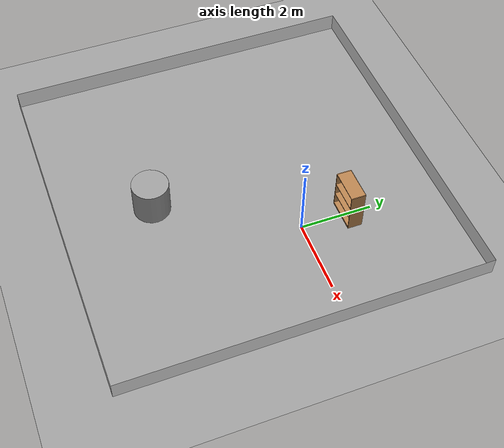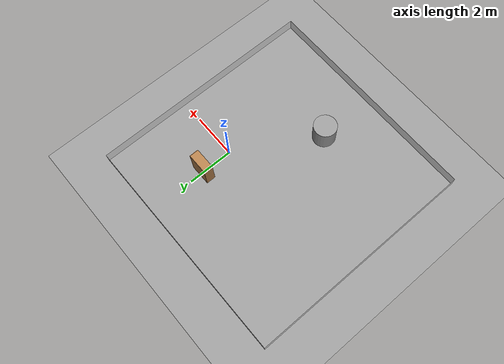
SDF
<sdf version="1.4">
 <world name="default">
  <light name="sun" type="directional">
   <pose>0 0 10 0 -0 0</pose>
   <diffuse>0.8 0.8 0.8 1</diffuse>
   <specular>0.2 0.2 0.2 1</specular>
   <attenuation>
    <range>1000</range>
    <constant>0.9</constant>
    <linear>0.01</linear>
    <quadratic>0.001</quadratic>
   </attenuation>
   <direction>0.5 0.1 -0.9</direction>
  </light>
  <scene><ambient>0.4 0.4 0.4 1</ambient><background>0.7 0.7 0.7 1</background><shadows>1</shadows></scene>
  <physics type="ode">
   <max_step_size>0.01</max_step_size>
   <real_time_factor>1</real_time_factor>
   <real_time_update_rate>100</real_time_update_rate>
   <gravity>0 0 -9.8</gravity>
  </physics>
  <model name="bookshelf">
   <static>1</static>
   <link name="link">
    <inertial><mass>1</mass></inertial>
    <collision name="back">
     <pose>0 0.005 0.6 0 -0 0</pose>
     <geometry><box><size>0.9 0.01 1.2</size></box></geometry>
    </collision>
    <visual name="visual1">
     <pose>0 0.005 0.6 0 -0 0</pose>
     <geometry><box><size>0.9 0.01 1.2</size></box></geometry>
     <material>
      <script><uri>file://media/materials/scripts/gazebo.material</uri><name>Gazebo/Wood</name></script>
     </material>
    </visual>
    <collision name="left_side">
     <pose>0.45 -0.195 0.6 0 -0 0</pose>
     <geometry><box><size>0.02 0.4 1.2</size></box></geometry>
    </collision>
    <visual name="visual2">
     <pose>0.45 -0.195 0.6 0 -0 0</pose>
     <geometry><box><size>0.02 0.4 1.2</size></box></geometry>
     <material>
      <script><uri>file://media/materials/scripts/gazebo.material</uri><name>Gazebo/Wood</name></script>
     </material>
    </visual>
    <collision name="right_side">
     <pose>-0.45 -0.195 0.6 0 -0 0</pose>
     <geometry><box><size>0.02 0.4 1.2</size></box></geometry>
    </collision>
    <visual name="visual3">
     <pose>-0.45 -0.195 0.6 0 -0 0</pose>
     <geometry><box><size>0.02 0.4 1.2</size></box></geometry>
     <material>
      <script><uri>file://media/materials/scripts/gazebo.material</uri><name>Gazebo/Wood</name></script>
     </material>
    </visual>
    <collision name="bottom">
     <pose>0 -0.195 0.03 0 -0 0</pose>
     <geometry><box><size>0.88 0.4 0.06</size></box></geometry>
    </collision>
    <visual name="visual4">
     <pose>0 -0.195 0.03 0 -0 0</pose>
     <geometry><box><size>0.88 0.4 0.06</size></box></geometry>
     <material>
      <script><uri>file://media/materials/scripts/gazebo.material</uri><name>Gazebo/Wood</name></script>
     </material>
    </visual>
    <collision name="top">
     <pose>0 -0.195 1.19 0 -0 0</pose>
     <geometry><box><size>0.88 0.4 0.02</size></box></geometry>
    </collision>
    <visual name="visual5">
     <pose>0 -0.195 1.19 0 -0 0</pose>
     <geometry><box><size>0.88 0.4 0.02</size></box></geometry>
     <material>
      <script><uri>file://media/materials/scripts/gazebo.material</uri><name>Gazebo/Wood</name></script>
     </material>
    </visual>
    <collision name="low_shelf">
     <pose>0 -0.195 0.43 0 -0 0</pose>
     <geometry><box><size>0.88 0.4 0.02</size></box></geometry>
    </collision>
    <visual name="visual6">
     <pose>0 -0.195 0.43 0 -0 0</pose>
     <geometry><box><size>0.88 0.4 0.02</size></box></geometry>
     <material>
      <script><uri>file://media/materials/scripts/gazebo.material</uri><name>Gazebo/Wood</name></script>
     </material>
    </visual>
    <collision name="high_shelf">
     <pose>0 -0.195 0.8 0 -0 0</pose>
     <geometry><box><size>0.88 0.4 0.02</size></box></geometry>
    </collision>
    <visual name="visual7">
     <pose>0 -0.195 0.8 0 -0 0</pose>
     <geometry><box><size>0.88 0.4 0.02</size></box></geometry>
     <material>
      <script><uri>file://media/materials/scripts/gazebo.material</uri><name>Gazebo/Wood</name></script>
     </material>
    </visual>
    <velocity_decay><linear>0</linear><angular>0</angular></velocity_decay>
   </link>
   <pose>0 1.53026 0 0 -0 0</pose>
  </model>
  <model name="ground_plane_0">
   <static>1</static>
   <link name="link">
    <collision name="collision">
     <geometry><plane><normal>0 0 1</normal><size>100 100</size></plane></geometry>
     <surface><friction><ode><mu>100</mu><mu2>50</mu2></ode></friction></surface>
    </collision>
    <visual name="visual">
     <cast_shadows>0</cast_shadows>
     <geometry><plane><normal>0 0 1</normal><size>100 100</size></plane></geometry>
     <material>
      <script><uri>file://media/materials/scripts/gazebo.material</uri><name>Gazebo/Grey</name></script>
     </material>
    </visual>
    <velocity_decay><linear>0</linear><angular>0</angular></velocity_decay>
   </link>
   <pose>0.497681 0 0 0 -0 0</pose>
  </model>
  <model name="unit_cylinder_1">
   <pose>-2 -3.4888 0.5 0 -0 0</pose>
   <link name="link">
    <inertial>
     <mass>1</mass>
     <inertia><ixx>1</ixx><ixy>0</ixy><ixz>0</ixz><iyy>1</iyy><iyz>0</iyz><izz>1</izz></inertia>
    </inertial>
    <collision name="collision">
     <geometry><cylinder><radius>0.5</radius><length>1</length></cylinder></geometry>
    </collision>
    <visual name="visual">
     <geometry><cylinder><radius>0.5</radius><length>1</length></cylinder></geometry>
     <material>
      <script><uri>file://media/materials/scripts/gazebo.material</uri><name>Gazebo/Grey</name></script>
     </material>
    </visual>
    <velocity_decay><linear>0</linear><angular>0</angular></velocity_decay>
   </link>
   <static>0</static>
  </model>
  <include><uri>model://playground_limits</uri></include>
 </world>
</sdf>

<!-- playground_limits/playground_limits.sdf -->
<sdf version='1.4'>
  <model name='playground_limits'>
    <link name='Wall_right'>
      <collision name='Wall_right_Collision'>
        <geometry>
          <box>
            <size>10.0 0 1</size>
          </box>
        </geometry>
        <pose>0 0 0 0 0 0</pose>
      </collision>
      <visual name='Wall_right_Visual'>
        <pose>0 0 0 0 0 0</pose>
        <geometry>
          <box>
            <size>10.0 0 1</size>
          </box>
        </geometry>
        <material>
          <script>
            <uri>file://media/materials/scripts/gazebo.material</uri>
            <name>Gazebo/WhiteGlow</name>
          </script>
        </material>
      </visual>
      <velocity_decay>
        <linear>0</linear>
        <angular>0</angular>
      </velocity_decay>
      <pose>-2.0 4.0 0 0 0 0</pose>
    </link>
    <link name='Wall_left'>
      <collision name='Wall_left_Collision'>
        <geometry>
          <box>
            <size>10.0 0 1</size>
          </box>
        </geometry>
        <pose>0 0 0 0 0 0</pose>
      </collision>
      <visual name='Wall_left_Visual'>
        <pose>0 0 0 0 0 0</pose>
        <geometry>
          <box>
            <size>10.0 0 1</size>
          </box>
        </geometry>
        <material>
          <script>
            <uri>file://media/materials/scripts/gazebo.material</uri>
            <name>Gazebo/WhiteGlow</name>
          </script>
        </material>
      </visual>
      <velocity_decay>
        <linear>0</linear>
        <angular>0</angular>
      </velocity_decay>
      <pose>-2.0 -6.0 0 0 0 0</pose>
    </link>
    <link name='Wall_back'>
      <collision name='Wall_back_Collision'>
        <geometry>
          <box>
            <size>10.0 0 1</size>
          </box>
        </geometry>
        <pose>0 0 0 0 0 0</pose>
      </collision>
      <visual name='Wall_back_Visual'>
        <pose>0 0 0 0 0 0</pose>
        <geometry>
          <box>
            <size>10.0 0 1</size>
          </box>
        </geometry>
        <material>
          <script>
            <uri>file://media/materials/scripts/gazebo.material</uri>
            <name>Gazebo/WhiteGlow</name>
          </script>
        </material>
      </visual>
      <velocity_decay>
        <linear>0</linear>
        <angular>0</angular>
      </velocity_decay>
      <pose>3.0 -1.0 0 0 0 1.57079632679</pose>
    </link>
    <link name='Wall_outside'>
      <collision name='Wall_outside_Collision'>
        <geometry>
          <box>
            <size>10.0 0 1</size>
          </box>
        </geometry>
        <pose>0 0 0 0 0 0</pose>
      </collision>
      <visual name='Wall_outside_Visual'>
        <pose>0 0 0 0 0 0</pose>
        <geometry>
          <box>
            <size>10.0 0 1</size>
          </box>
        </geometry>
        <material>
          <script>
            <uri>file://media/materials/scripts/gazebo.material</uri>
            <name>Gazebo/WhiteGlow</name>
          </script>
        </material>
      </visual>
      <velocity_decay>
        <linear>0</linear>
        <angular>0</angular>
      </velocity_decay>
      <pose>-7.0 -1.0 0 0 0 1.57079632679</pose>
    </link>
    <static>1</static>
  </model>
</sdf>
